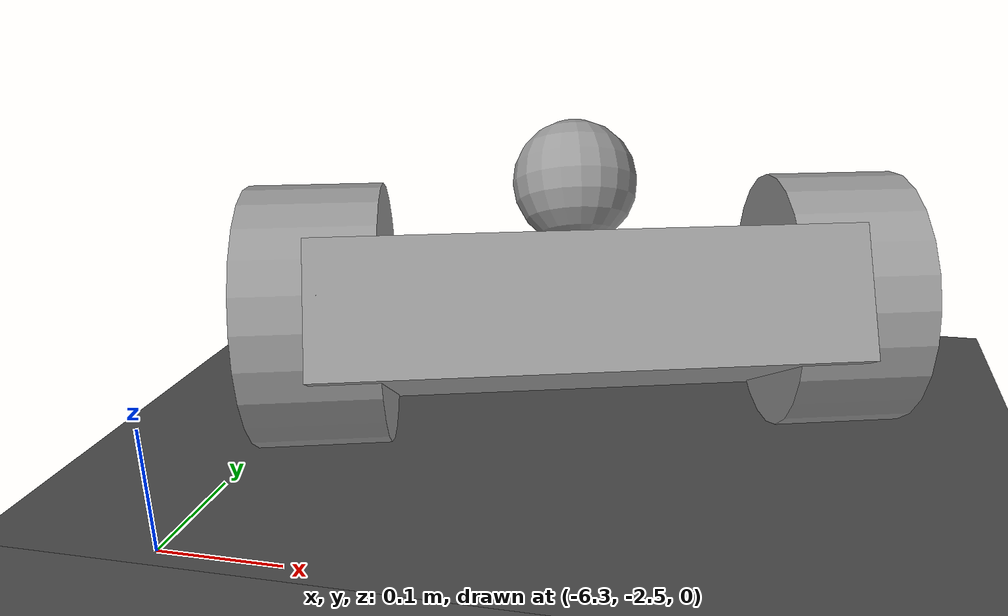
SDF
<sdf version="1.6">
 <world name="default">
  <model name="ground_plane">
   <static>1</static>
   <link name="link">
    <collision name="collision">
     <geometry><plane><normal>0 0 1</normal><size>100 100</size></plane></geometry>
     <surface>
      <contact><collide_bitmask>65535</collide_bitmask></contact>
      <friction><ode><mu>100</mu><mu2>50</mu2></ode></friction>
     </surface>
    </collision>
    <visual name="visual">
     <cast_shadows>0</cast_shadows>
     <geometry><plane><normal>0 0 1</normal><size>100 100</size></plane></geometry>
     <material>
      <script><uri>file://media/materials/scripts/gazebo.material</uri><name>Gazebo/Grey</name></script>
     </material>
    </visual>
   </link>
  </model>
  <model name="asphalt_plane">
   <static>1</static>
   <link name="link">
    <collision name="collision"><geometry><box><size>20 20 0.1</size></box></geometry></collision>
    <visual name="visual">
     <cast_shadows>0</cast_shadows>
     <geometry><box><size>20 20 0.1</size></box></geometry>
     <material>
      <script>
       <uri>model://asphalt_plane/materials/scripts</uri>
       <uri>model://asphalt_plane/materials/textures</uri>
       <name>vrc/asphalt</name>
      </script>
     </material>
    </visual>
   </link>
   <pose>-2.78394 -2.8847 0 0 -0 0</pose>
  </model>
  <model name="Robots_clone">
   <link name="link_0">
    <pose>0 0 0.19 0 -0 0</pose>
    <inertial>
     <mass>1</mass>
     <inertia>
      <ixx>0.166667</ixx>
      <ixy>0</ixy>
      <ixz>0</ixz>
      <iyy>0.166667</iyy>
      <iyz>0</iyz>
      <izz>0.166667</izz>
     </inertia>
    </inertial>
    <visual name="visual">
     <geometry><box><size>0.2 0.4 0.1</size></box></geometry>
     <material>
      <lighting>1</lighting>
      <script><uri>file://media/materials/scripts/gazebo.material</uri><name>Gazebo/Grey</name></script>
      <shader type="pixel"><normal_map>__default__</normal_map></shader>
      <ambient>0.3 0.3 0.3 1</ambient>
      <diffuse>0.7 0.7 0.7 1</diffuse>
      <specular>0.01 0.01 0.01 1</specular>
      <emissive>0 0 0 1</emissive>
     </material>
    </visual>
    <collision name="collision">
     <geometry><box><size>0.2 0.4 0.1</size></box></geometry>
     <surface>
      <friction>
       <ode><mu>1</mu><mu2>1</mu2><fdir1>0 0 0</fdir1><slip1>0</slip1><slip2>0</slip2></ode>
       <torsional>
        <coefficient>1</coefficient>
        <patch_radius>0</patch_radius>
        <surface_radius>0</surface_radius>
        <use_patch_radius>1</use_patch_radius>
        <ode><slip>0</slip></ode>
       </torsional>
      </friction>
      <bounce><restitution_coefficient>0</restitution_coefficient><threshold>1e+06</threshold></bounce>
      <contact>
       <collide_without_contact>0</collide_without_contact>
       <collide_without_contact_bitmask>1</collide_without_contact_bitmask>
       <collide_bitmask>1</collide_bitmask>
       <ode>
        <soft_cfm>0</soft_cfm>
        <soft_erp>0.2</soft_erp>
        <kp>1e+13</kp>
        <kd>1</kd>
        <max_vel>0.01</max_vel>
        <min_depth>0</min_depth>
       </ode>
       <bullet>
        <split_impulse>1</split_impulse>
        <split_impulse_penetration_threshold>-0.01</split_impulse_penetration_threshold>
        <soft_cfm>0</soft_cfm>
        <soft_erp>0.2</soft_erp>
        <kp>1e+13</kp>
        <kd>1</kd>
       </bullet>
      </contact>
     </surface>
    </collision>
   </link>
   <link name="link_0_0">
    <pose>0 -0.2 0.2 1.5707 -0 0</pose>
    <inertial>
     <mass>1</mass>
     <inertia><ixx>0.145833</ixx><ixy>0</ixy><ixz>0</ixz><iyy>0.145833</iyy><iyz>0</iyz><izz>0.125</izz></inertia>
    </inertial>
    <visual name="visual">
     <geometry><cylinder><radius>0.1</radius><length>0.1</length></cylinder></geometry>
     <material>
      <lighting>1</lighting>
      <script><uri>file://media/materials/scripts/gazebo.material</uri><name>Gazebo/Grey</name></script>
      <shader type="pixel"><normal_map>__default__</normal_map></shader>
      <ambient>0.3 0.3 0.3 1</ambient>
      <diffuse>0.7 0.7 0.7 1</diffuse>
      <specular>0.01 0.01 0.01 1</specular>
      <emissive>0 0 0 1</emissive>
     </material>
    </visual>
    <collision name="collision">
     <geometry><cylinder><radius>0.1</radius><length>0.1</length></cylinder></geometry>
     <surface>
      <friction>
       <ode><mu>1</mu><mu2>1</mu2><fdir1>0 0 0</fdir1><slip1>0</slip1><slip2>0</slip2></ode>
       <torsional>
        <coefficient>1</coefficient>
        <patch_radius>0</patch_radius>
        <surface_radius>0</surface_radius>
        <use_patch_radius>1</use_patch_radius>
        <ode><slip>0</slip></ode>
       </torsional>
      </friction>
      <bounce><restitution_coefficient>0</restitution_coefficient><threshold>1e+06</threshold></bounce>
      <contact>
       <collide_without_contact>0</collide_without_contact>
       <collide_without_contact_bitmask>1</collide_without_contact_bitmask>
       <collide_bitmask>1</collide_bitmask>
       <ode>
        <soft_cfm>0</soft_cfm>
        <soft_erp>0.2</soft_erp>
        <kp>1e+13</kp>
        <kd>1</kd>
        <max_vel>0.01</max_vel>
        <min_depth>0</min_depth>
       </ode>
       <bullet>
        <split_impulse>1</split_impulse>
        <split_impulse_penetration_threshold>-0.01</split_impulse_penetration_threshold>
        <soft_cfm>0</soft_cfm>
        <soft_erp>0.2</soft_erp>
        <kp>1e+13</kp>
        <kd>1</kd>
       </bullet>
      </contact>
     </surface>
    </collision>
   </link>
   <link name="link_0_0_clone">
    <pose>-0 0.2 0.2 1.5707 -0 0</pose>
    <inertial>
     <mass>1</mass>
     <inertia><ixx>0.145833</ixx><ixy>0</ixy><ixz>0</ixz><iyy>0.145833</iyy><iyz>0</iyz><izz>0.125</izz></inertia>
    </inertial>
    <visual name="visual_0">
     <geometry><cylinder><radius>0.1</radius><length>0.1</length></cylinder></geometry>
     <material>
      <lighting>1</lighting>
      <script><uri>file://media/materials/scripts/gazebo.material</uri><name>Gazebo/Grey</name></script>
      <shader type="pixel"><normal_map>__default__</normal_map></shader>
      <ambient>0.3 0.3 0.3 1</ambient>
      <diffuse>0.7 0.7 0.7 1</diffuse>
      <specular>0.01 0.01 0.01 1</specular>
      <emissive>0 0 0 1</emissive>
     </material>
    </visual>
    <collision name="collision">
     <geometry><cylinder><radius>0.1</radius><length>0.1</length></cylinder></geometry>
     <surface>
      <friction>
       <ode><mu>1</mu><mu2>1</mu2><fdir1>0 0 0</fdir1><slip1>0</slip1><slip2>0</slip2></ode>
       <torsional>
        <coefficient>1</coefficient>
        <patch_radius>0</patch_radius>
        <surface_radius>0</surface_radius>
        <use_patch_radius>1</use_patch_radius>
        <ode><slip>0</slip></ode>
       </torsional>
      </friction>
      <bounce><restitution_coefficient>0</restitution_coefficient><threshold>1e+06</threshold></bounce>
      <contact>
       <collide_without_contact>0</collide_without_contact>
       <collide_without_contact_bitmask>1</collide_without_contact_bitmask>
       <collide_bitmask>1</collide_bitmask>
       <ode>
        <soft_cfm>0</soft_cfm>
        <soft_erp>0.2</soft_erp>
        <kp>1e+13</kp>
        <kd>1</kd>
        <max_vel>0.01</max_vel>
        <min_depth>0</min_depth>
       </ode>
       <bullet>
        <split_impulse>1</split_impulse>
        <split_impulse_penetration_threshold>-0.01</split_impulse_penetration_threshold>
        <soft_cfm>0</soft_cfm>
        <soft_erp>0.2</soft_erp>
        <kp>1e+13</kp>
        <kd>1</kd>
       </bullet>
      </contact>
     </surface>
    </collision>
   </link>
   <link name="link_0_1">
    <pose>-0 -0 0.3 0 6e-06 0.000162</pose>
    <inertial>
     <mass>1</mass>
     <inertia><ixx>0.1</ixx><ixy>0</ixy><ixz>0</ixz><iyy>0.1</iyy><iyz>0</iyz><izz>0.1</izz></inertia>
    </inertial>
    <visual name="visual">
     <geometry><sphere><radius>0.05</radius></sphere></geometry>
     <material>
      <lighting>1</lighting>
      <script><uri>file://media/materials/scripts/gazebo.material</uri><name>Gazebo/Grey</name></script>
      <shader type="pixel"><normal_map>__default__</normal_map></shader>
      <ambient>0.3 0.3 0.3 1</ambient>
      <diffuse>0.7 0.7 0.7 1</diffuse>
      <specular>0.01 0.01 0.01 1</specular>
      <emissive>0 0 0 1</emissive>
     </material>
    </visual>
    <collision name="collision">
     <geometry><sphere><radius>0.05</radius></sphere></geometry>
     <surface>
      <friction>
       <ode><mu>1</mu><mu2>1</mu2><fdir1>0 0 0</fdir1><slip1>0</slip1><slip2>0</slip2></ode>
       <torsional>
        <coefficient>1</coefficient>
        <patch_radius>0</patch_radius>
        <surface_radius>0</surface_radius>
        <use_patch_radius>1</use_patch_radius>
        <ode><slip>0</slip></ode>
       </torsional>
      </friction>
      <bounce><restitution_coefficient>0</restitution_coefficient><threshold>1e+06</threshold></bounce>
      <contact>
       <collide_without_contact>0</collide_without_contact>
       <collide_without_contact_bitmask>1</collide_without_contact_bitmask>
       <collide_bitmask>1</collide_bitmask>
       <ode>
        <soft_cfm>0</soft_cfm>
        <soft_erp>0.2</soft_erp>
        <kp>1e+13</kp>
        <kd>1</kd>
        <max_vel>0.01</max_vel>
        <min_depth>0</min_depth>
       </ode>
       <bullet>
        <split_impulse>1</split_impulse>
        <split_impulse_penetration_threshold>-0.01</split_impulse_penetration_threshold>
        <soft_cfm>0</soft_cfm>
        <soft_erp>0.2</soft_erp>
        <kp>1e+13</kp>
        <kd>1</kd>
       </bullet>
      </contact>
     </surface>
    </collision>
   </link>
   <joint name="link_0_JOINT_0" type="revolute">
    <parent>link_0</parent>
    <child>link_0_0</child>
    <axis>
     <xyz>0 0 1</xyz>
     <use_parent_model_frame>0</use_parent_model_frame>
     <limit>
      <lower>-1.79769e+308</lower>
      <upper>1.79769e+308</upper>
      <effort>-1</effort>
      <velocity>-1</velocity>
     </limit>
     <dynamics>
      <spring_reference>0</spring_reference>
      <spring_stiffness>0</spring_stiffness>
      <damping>0</damping>
      <friction>0</friction>
     </dynamics>
    </axis>
    <physics>
     <ode><limit><cfm>0</cfm><erp>0.2</erp></limit><suspension><cfm>0</cfm><erp>0.2</erp></suspension></ode>
    </physics>
   </joint>
   <joint name="link_0_JOINT_1_0" type="ball">
    <parent>link_0</parent>
    <child>link_0_1</child>
    <physics>
     <ode><limit><cfm>0</cfm><erp>0.2</erp></limit><suspension><cfm>0</cfm><erp>0.2</erp></suspension></ode>
    </physics>
   </joint>
   <joint name="link_0_JOINT_1" type="revolute">
    <parent>link_0</parent>
    <child>link_0_0_clone</child>
    <axis>
     <xyz>0 0 1</xyz>
     <use_parent_model_frame>0</use_parent_model_frame>
     <limit>
      <lower>-1.79769e+308</lower>
      <upper>1.79769e+308</upper>
      <effort>-1</effort>
      <velocity>-1</velocity>
     </limit>
     <dynamics>
      <spring_reference>0</spring_reference>
      <spring_stiffness>0</spring_stiffness>
      <damping>0</damping>
      <friction>0</friction>
     </dynamics>
    </axis>
    <physics>
     <ode><limit><cfm>0</cfm><erp>0.2</erp></limit><suspension><cfm>0</cfm><erp>0.2</erp></suspension></ode>
    </physics>
   </joint>
   <joint name="link_0_JOINT_2" type="revolute">
    <parent>link_0</parent>
    <child>link_0_0</child>
    <axis>
     <xyz>0 0 1</xyz>
     <use_parent_model_frame>0</use_parent_model_frame>
     <limit>
      <lower>-1.79769e+308</lower>
      <upper>1.79769e+308</upper>
      <effort>-1</effort>
      <velocity>-1</velocity>
     </limit>
     <dynamics>
      <spring_reference>0</spring_reference>
      <spring_stiffness>0</spring_stiffness>
      <damping>0</damping>
      <friction>0</friction>
     </dynamics>
    </axis>
    <physics>
     <ode><limit><cfm>0</cfm><erp>0.2</erp></limit><suspension><cfm>0</cfm><erp>0.2</erp></suspension></ode>
    </physics>
   </joint>
   <joint name="link_0_JOINT_3" type="revolute">
    <parent>link_0</parent>
    <child>link_0_0_clone</child>
    <axis>
     <xyz>0 0 1</xyz>
     <use_parent_model_frame>0</use_parent_model_frame>
     <limit>
      <lower>-1.79769e+308</lower>
      <upper>1.79769e+308</upper>
      <effort>-1</effort>
      <velocity>-1</velocity>
     </limit>
     <dynamics>
      <spring_reference>0</spring_reference>
      <spring_stiffness>0</spring_stiffness>
      <damping>0</damping>
      <friction>0</friction>
     </dynamics>
    </axis>
    <physics>
     <ode><limit><cfm>0</cfm><erp>0.2</erp></limit><suspension><cfm>0</cfm><erp>0.2</erp></suspension></ode>
    </physics>
   </joint>
   <static>0</static>
   <pose>-5.98764 -2.41436 -0.02646 7e-06 -0.490016 -1.27393</pose>
  </model>
 </world>
</sdf>
